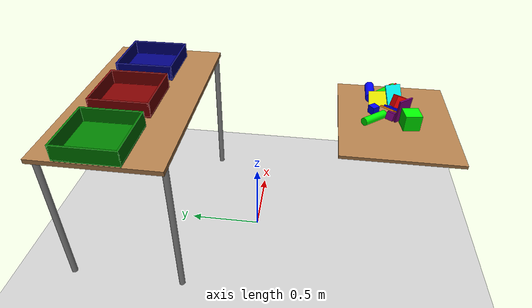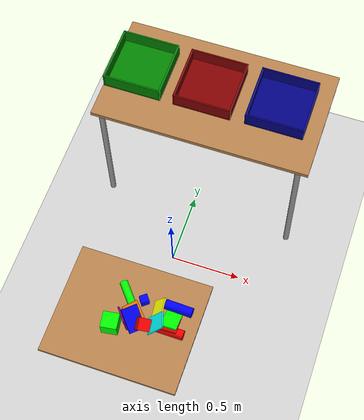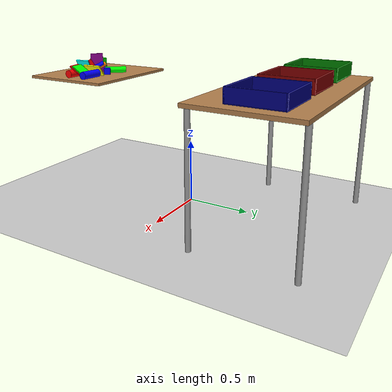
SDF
<sdf version="1.7">
 <world name="default">
  <light name="sun" type="directional">
   <pose>0 0 10 0 -0 0</pose>
   <diffuse>0.8 0.8 0.8 1</diffuse>
   <specular>0.2 0.2 0.2 1</specular>
   <attenuation>
    <range>1000</range>
    <constant>0.9</constant>
    <linear>0.01</linear>
    <quadratic>0.001</quadratic>
   </attenuation>
   <direction>-0.5 0.1 -0.9</direction>
   <spot><inner_angle>0</inner_angle><outer_angle>0</outer_angle><falloff>0</falloff></spot>
  </light>
  <model name="ground_plane">
   <static>1</static>
   <link name="link">
    <collision name="collision">
     <geometry><plane><normal>0 0 1</normal><size>100 100</size></plane></geometry>
     <surface><friction><ode><mu>100</mu><mu2>50</mu2></ode></friction></surface>
    </collision>
    <visual name="visual">
     <cast_shadows>0</cast_shadows>
     <geometry><plane><normal>0 0 1</normal><size>100 100</size></plane></geometry>
     <material>
      <script><uri>file://media/materials/scripts/gazebo.material</uri><name>Gazebo/Grey</name></script>
     </material>
    </visual>
   </link>
  </model>
  <gravity>0 0 -9.8</gravity>
  <magnetic_field>6e-06 2.3e-05 -4.2e-05</magnetic_field>
  <atmosphere type="adiabatic"/>
  <physics type="ode">
   <max_step_size>0.001</max_step_size>
   <real_time_factor>1</real_time_factor>
   <real_time_update_rate>1000</real_time_update_rate>
  </physics>
  <scene><ambient>0.4 0.4 0.4 1</ambient><background>0.7 0.7 0.7 1</background><shadows>1</shadows></scene>
  <audio><device>default</device></audio>
  <spherical_coordinates>
   <surface_model>EARTH_WGS84</surface_model>
   <latitude_deg>0</latitude_deg>
   <longitude_deg>0</longitude_deg>
   <elevation>0</elevation>
   <heading_deg>0</heading_deg>
  </spherical_coordinates>
  <model name="table">
   <static>1</static>
   <link name="link">
    <collision name="surface">
     <pose>0 0 1 0 -0 0</pose>
     <geometry><box><size>1.5 0.8 0.03</size></box></geometry>
     <surface>
      <friction><ode><mu>10</mu><mu2>5</mu2></ode></friction>
      <contact><ode><soft_cfm>0.0001</soft_cfm><soft_erp>0.4</soft_erp><kp>1e+06</kp><kd>10</kd></ode></contact>
     </surface>
    </collision>
    <visual name="visual1">
     <pose>0 0 1 0 -0 0</pose>
     <geometry><box><size>1.5 0.8 0.03</size></box></geometry>
     <material>
      <script><uri>file://media/materials/scripts/gazebo.material</uri><name>Gazebo/Wood</name></script>
     </material>
    </visual>
    <collision name="front_left_leg">
     <pose>0.68 0.38 0.5 0 -0 0</pose>
     <geometry><cylinder><radius>0.02</radius><length>1</length></cylinder></geometry>
    </collision>
    <visual name="front_left_leg">
     <pose>0.68 0.38 0.5 0 -0 0</pose>
     <geometry><cylinder><radius>0.02</radius><length>1</length></cylinder></geometry>
     <material>
      <script><uri>file://media/materials/scripts/gazebo.material</uri><name>Gazebo/Grey</name></script>
     </material>
    </visual>
    <collision name="front_right_leg">
     <pose>0.68 -0.38 0.5 0 -0 0</pose>
     <geometry><cylinder><radius>0.02</radius><length>1</length></cylinder></geometry>
    </collision>
    <visual name="front_right_leg">
     <pose>0.68 -0.38 0.5 0 -0 0</pose>
     <geometry><cylinder><radius>0.02</radius><length>1</length></cylinder></geometry>
     <material>
      <script><uri>file://media/materials/scripts/gazebo.material</uri><name>Gazebo/Grey</name></script>
     </material>
    </visual>
    <collision name="back_right_leg">
     <pose>-0.68 -0.38 0.5 0 -0 0</pose>
     <geometry><cylinder><radius>0.02</radius><length>1</length></cylinder></geometry>
    </collision>
    <visual name="back_right_leg">
     <pose>-0.68 -0.38 0.5 0 -0 0</pose>
     <geometry><cylinder><radius>0.02</radius><length>1</length></cylinder></geometry>
     <material>
      <script><uri>file://media/materials/scripts/gazebo.material</uri><name>Gazebo/Grey</name></script>
     </material>
    </visual>
    <collision name="back_left_leg">
     <pose>-0.68 0.38 0.5 0 -0 0</pose>
     <geometry><cylinder><radius>0.02</radius><length>1</length></cylinder></geometry>
    </collision>
    <visual name="back_left_leg">
     <pose>-0.68 0.38 0.5 0 -0 0</pose>
     <geometry><cylinder><radius>0.02</radius><length>1</length></cylinder></geometry>
     <material>
      <script><uri>file://media/materials/scripts/gazebo.material</uri><name>Gazebo/Grey</name></script>
     </material>
    </visual>
    <inertial>
     <inertia><ixx>1</ixx><ixy>0</ixy><ixz>0</ixz><iyy>1</iyy><iyz>0</iyz><izz>1</izz></inertia>
     <mass>50</mass>
    </inertial>
   </link>
   <pose>0.056083 0.801191 -1.2e-05 0 -0 2.5e-05</pose>
  </model>
  <plugin name="gazebo_link_attacher" filename="libgazebo_link_attacher.so"/>
  <plugin name="gazebo_ros_state" filename="libgazebo_ros_state.so">
   <namespace>/gazebo</namespace>
   <update_rate>100</update_rate>
  </plugin>
  <model name="cube_b">
   <link name="link_2">
    <inertial>
     <mass>2</mass>
     <inertia>
      <ixx>0.00083333</ixx>
      <ixy>0</ixy>
      <ixz>0</ixz>
      <iyy>0.00083333</iyy>
      <iyz>0</iyz>
      <izz>0.00083333</izz>
     </inertia>
    </inertial>
    <visual name="visual">
     <geometry><box><size>0.05 0.05 0.05</size></box></geometry>
     <material>
      <lighting>1</lighting>
      <script><uri>file://media/materials/scripts/gazebo.material</uri><name>Gazebo/Grey</name></script>
      <ambient>0 0 1 1</ambient>
      <diffuse>0 0 1 1</diffuse>
      <specular>0 0 0 1</specular>
      <emissive>0 0 0 1</emissive>
      <shader type="vertex"><normal_map>__default__</normal_map></shader>
     </material>
    </visual>
    <collision name="collision">
     <geometry><box><size>0.05 0.05 0.05</size></box></geometry>
     <surface>
      <friction>
       <ode><mu>0.8</mu><mu2>0.8</mu2><fdir1>0 0 0</fdir1><slip1>0</slip1><slip2>0</slip2></ode>
       <torsional>
        <coefficient>1</coefficient>
        <patch_radius>0</patch_radius>
        <surface_radius>0</surface_radius>
        <use_patch_radius>1</use_patch_radius>
        <ode><slip>0</slip></ode>
       </torsional>
      </friction>
      <bounce><restitution_coefficient>0</restitution_coefficient><threshold>1e+06</threshold></bounce>
      <contact>
       <collide_without_contact>0</collide_without_contact>
       <collide_without_contact_bitmask>1</collide_without_contact_bitmask>
       <collide_bitmask>1</collide_bitmask>
       <ode>
        <soft_cfm>0.0001</soft_cfm>
        <soft_erp>0.4</soft_erp>
        <kp>1e+06</kp>
        <kd>10</kd>
        <max_vel>0.01</max_vel>
        <min_depth>0</min_depth>
       </ode>
      </contact>
     </surface>
    </collision>
   </link>
   <static>0</static>
   <allow_auto_disable>0</allow_auto_disable>
   <pose>0.106589 -0.730785 1.01116 1.56916 -0.00398 0.655541</pose>
  </model>
  <model name="cube_g">
   <link name="link_2">
    <inertial>
     <mass>2</mass>
     <inertia>
      <ixx>0.00333333</ixx>
      <iyy>0.00333333</iyy>
      <izz>0.00333333</izz>
      <ixy>0</ixy>
      <ixz>0</ixz>
      <iyz>0</iyz>
     </inertia>
    </inertial>
    <visual name="visual">
     <geometry><box><size>0.1 0.1 0.1</size></box></geometry>
     <material>
      <lighting>1</lighting>
      <script><uri>file://media/materials/scripts/gazebo.material</uri><name>Gazebo/Grey</name></script>
      <ambient>0 1 0 1</ambient>
      <diffuse>0 1 0 1</diffuse>
      <specular>0 0 0 1</specular>
      <emissive>0 0 0 1</emissive>
      <shader type="vertex"><normal_map>__default__</normal_map></shader>
     </material>
    </visual>
    <collision name="collision">
     <geometry><box><size>0.1 0.1 0.1</size></box></geometry>
     <surface>
      <friction>
       <ode><mu>0.8</mu><mu2>0.8</mu2><fdir1>0 0 0</fdir1><slip1>0</slip1><slip2>0</slip2></ode>
       <torsional>
        <coefficient>1</coefficient>
        <patch_radius>0</patch_radius>
        <surface_radius>0</surface_radius>
        <use_patch_radius>1</use_patch_radius>
        <ode><slip>0</slip></ode>
       </torsional>
      </friction>
      <bounce><restitution_coefficient>0</restitution_coefficient><threshold>1e+06</threshold></bounce>
      <contact>
       <collide_without_contact>0</collide_without_contact>
       <collide_without_contact_bitmask>1</collide_without_contact_bitmask>
       <collide_bitmask>1</collide_bitmask>
       <ode>
        <soft_cfm>0.0001</soft_cfm>
        <soft_erp>0.4</soft_erp>
        <kp>1e+06</kp>
        <kd>10</kd>
        <max_vel>0.01</max_vel>
        <min_depth>0</min_depth>
       </ode>
      </contact>
     </surface>
    </collision>
   </link>
   <static>0</static>
   <allow_auto_disable>0</allow_auto_disable>
   <pose>-0.027816 -0.937987 1.03537 0.000525 -0.0043 0.141789</pose>
  </model>
  <model name="cube_r">
   <link name="link_2">
    <inertial>
     <mass>2</mass>
     <inertia>
      <ixx>0.001875</ixx>
      <ixy>0</ixy>
      <ixz>0</ixz>
      <iyy>0.001875</iyy>
      <iyz>0</iyz>
      <izz>0.001875</izz>
     </inertia>
    </inertial>
    <visual name="visual">
     <geometry><box><size>0.075 0.075 0.075</size></box></geometry>
     <material>
      <lighting>1</lighting>
      <script><uri>file://media/materials/scripts/gazebo.material</uri><name>Gazebo/Grey</name></script>
      <ambient>1 0 0 1</ambient>
      <diffuse>1 0 0 1</diffuse>
      <specular>0 0 0 1</specular>
      <emissive>0 0 0 1</emissive>
      <shader type="vertex"><normal_map>__default__</normal_map></shader>
     </material>
    </visual>
    <collision name="collision">
     <geometry><box><size>0.075 0.075 0.075</size></box></geometry>
     <surface>
      <friction>
       <ode><mu>0.8</mu><mu2>0.8</mu2><fdir1>0 0 0</fdir1><slip1>0</slip1><slip2>0</slip2></ode>
       <torsional>
        <coefficient>1</coefficient>
        <patch_radius>0</patch_radius>
        <surface_radius>0</surface_radius>
        <use_patch_radius>1</use_patch_radius>
        <ode><slip>0</slip></ode>
       </torsional>
      </friction>
      <bounce><restitution_coefficient>0</restitution_coefficient><threshold>1e+06</threshold></bounce>
      <contact>
       <collide_without_contact>0</collide_without_contact>
       <collide_without_contact_bitmask>1</collide_without_contact_bitmask>
       <collide_bitmask>1</collide_bitmask>
       <ode>
        <soft_cfm>0.0001</soft_cfm>
        <soft_erp>0.4</soft_erp>
        <kp>1e+06</kp>
        <kd>10</kd>
        <max_vel>0.01</max_vel>
        <min_depth>0</min_depth>
       </ode>
      </contact>
     </surface>
    </collision>
   </link>
   <static>0</static>
   <allow_auto_disable>0</allow_auto_disable>
   <pose>0.158218 -0.888087 1.04416 1.92583 -0.33727 1.67069</pose>
  </model>
  <model name="cylinder_r">
   <link name="link_0">
    <inertial>
     <mass>0.2</mass>
     <inertia>
      <ixx>0.0005267</ixx>
      <ixy>0</ixy>
      <ixz>0</ixz>
      <iyy>0.0005267</iyy>
      <iyz>0</iyz>
      <izz>9e-05</izz>
     </inertia>
    </inertial>
    <visual name="visual">
     <geometry><cylinder><radius>0.03</radius><length>0.17</length></cylinder></geometry>
     <material>
      <lighting>1</lighting>
      <script><uri>file://media/materials/scripts/gazebo.material</uri><name>Gazebo/Grey</name></script>
      <ambient>1 0 0 1</ambient>
      <diffuse>1 0 0 1</diffuse>
      <specular>0 0 0 1</specular>
      <emissive>0 0 0 1</emissive>
      <shader type="vertex"><normal_map>__default__</normal_map></shader>
     </material>
    </visual>
    <collision name="collision">
     <geometry><cylinder><radius>0.03</radius><length>0.17</length></cylinder></geometry>
     <surface>
      <friction>
       <ode><mu>0.5</mu><mu2>0.5</mu2><fdir1>0 0 0</fdir1><slip1>0</slip1><slip2>0</slip2></ode>
       <torsional>
        <coefficient>1</coefficient>
        <patch_radius>0</patch_radius>
        <surface_radius>0</surface_radius>
        <use_patch_radius>1</use_patch_radius>
        <ode><slip>0</slip></ode>
       </torsional>
      </friction>
      <bounce><restitution_coefficient>0</restitution_coefficient><threshold>1e+06</threshold></bounce>
      <contact>
       <collide_without_contact>0</collide_without_contact>
       <collide_without_contact_bitmask>1</collide_without_contact_bitmask>
       <collide_bitmask>1</collide_bitmask>
       <ode>
        <soft_cfm>0.0001</soft_cfm>
        <soft_erp>0.4</soft_erp>
        <kp>1e+06</kp>
        <kd>10</kd>
        <max_vel>0.01</max_vel>
        <min_depth>0</min_depth>
       </ode>
      </contact>
     </surface>
    </collision>
   </link>
   <static>0</static>
   <allow_auto_disable>0</allow_auto_disable>
   <pose>0.316583 -0.868675 1.01684 1.56393 0.86936 1.55492</pose>
  </model>
  <model name="cylinder_b">
   <link name="link_0">
    <inertial>
     <mass>0.2</mass>
     <inertia>
      <ixx>0.0005267</ixx>
      <ixy>0</ixy>
      <ixz>0</ixz>
      <iyy>0.0005267</iyy>
      <iyz>0</iyz>
      <izz>9e-05</izz>
     </inertia>
    </inertial>
    <visual name="visual">
     <geometry><cylinder><radius>0.03</radius><length>0.17</length></cylinder></geometry>
     <material>
      <lighting>1</lighting>
      <ambient>0 0 1 1</ambient>
      <diffuse>0 0 1 1</diffuse>
      <specular>0.1 0.1 0.1 1</specular>
      <emissive>0 0 0 1</emissive>
      <shader type="vertex"><normal_map>__default__</normal_map></shader>
     </material>
    </visual>
    <collision name="collision">
     <geometry><cylinder><radius>0.03</radius><length>0.17</length></cylinder></geometry>
     <surface>
      <friction>
       <ode><mu>0.4</mu><mu2>0.4</mu2><fdir1>0 0 0</fdir1><slip1>0</slip1><slip2>0</slip2></ode>
       <torsional>
        <coefficient>1</coefficient>
        <patch_radius>0</patch_radius>
        <surface_radius>0</surface_radius>
        <use_patch_radius>1</use_patch_radius>
        <ode><slip>0</slip></ode>
       </torsional>
      </friction>
      <bounce><restitution_coefficient>0</restitution_coefficient><threshold>1e+06</threshold></bounce>
      <contact>
       <collide_without_contact>0</collide_without_contact>
       <collide_without_contact_bitmask>1</collide_without_contact_bitmask>
       <collide_bitmask>1</collide_bitmask>
       <ode>
        <soft_cfm>0.0001</soft_cfm>
        <soft_erp>0.4</soft_erp>
        <kp>1e+06</kp>
        <kd>10</kd>
        <max_vel>0.01</max_vel>
        <min_depth>0</min_depth>
       </ode>
      </contact>
     </surface>
    </collision>
   </link>
   <static>0</static>
   <allow_auto_disable>0</allow_auto_disable>
   <pose>0.321285 -0.717905 1.01707 -1.56627 -0.425269 -1.6005</pose>
  </model>
  <model name="cylinder_g">
   <link name="link_0">
    <inertial>
     <mass>0.2</mass>
     <inertia>
      <ixx>0.0005129</ixx>
      <ixy>0</ixy>
      <ixz>0</ixz>
      <iyy>0.0005129</iyy>
      <iyz>0</iyz>
      <izz>6.25e-05</izz>
     </inertia>
    </inertial>
    <visual name="visual">
     <geometry><cylinder><radius>0.025</radius><length>0.17</length></cylinder></geometry>
     <material>
      <lighting>1</lighting>
      <ambient>0 1 0 1</ambient>
      <diffuse>0 1 0 1</diffuse>
      <specular>0.1 0.1 0.1 1</specular>
      <emissive>0 0 0 1</emissive>
      <shader type="vertex"><normal_map>__default__</normal_map></shader>
     </material>
    </visual>
    <collision name="collision">
     <geometry><cylinder><radius>0.025</radius><length>0.17</length></cylinder></geometry>
     <surface>
      <friction>
       <ode><mu>0.5</mu><mu2>0.5</mu2><fdir1>0 0 0</fdir1><slip1>0</slip1><slip2>0</slip2></ode>
       <torsional>
        <coefficient>1</coefficient>
        <patch_radius>0</patch_radius>
        <surface_radius>0</surface_radius>
        <use_patch_radius>1</use_patch_radius>
        <ode><slip>0</slip></ode>
       </torsional>
      </friction>
      <bounce><restitution_coefficient>0</restitution_coefficient><threshold>1e+06</threshold></bounce>
      <contact>
       <collide_without_contact>0</collide_without_contact>
       <collide_without_contact_bitmask>1</collide_without_contact_bitmask>
       <collide_bitmask>1</collide_bitmask>
       <ode>
        <soft_cfm>0.0001</soft_cfm>
        <soft_erp>0.4</soft_erp>
        <kp>1e+06</kp>
        <kd>10</kd>
        <max_vel>0.01</max_vel>
        <min_depth>0</min_depth>
       </ode>
      </contact>
     </surface>
    </collision>
   </link>
   <static>0</static>
   <allow_auto_disable>0</allow_auto_disable>
   <pose>0.003328 -0.727603 1.01073 1.57654 -1.24817 -2.44531</pose>
  </model>
  <model name="cuboid_r">
   <link name="link">
    <inertial>
     <mass>2</mass>
     <inertia>
      <ixx>0.001683</ixx>
      <iyy>0.003767</iyy>
      <izz>0.005417</izz>
      <ixy>0</ixy>
      <ixz>0</ixz>
      <iyz>0</iyz>
     </inertia>
    </inertial>
    <visual name="visual">
     <geometry><box><size>0.15 0.1 0.01</size></box></geometry>
     <material><ambient>1 0 0 1</ambient><diffuse>1 0 0 1</diffuse><specular>0.1 0.1 0.1 1</specular></material>
    </visual>
    <collision name="collision">
     <geometry><box><size>0.15 0.1 0.01</size></box></geometry>
     <surface>
      <friction>
       <ode><mu>0.6</mu><mu2>0.6</mu2><fdir1>0 0 0</fdir1><slip1>0</slip1><slip2>0</slip2></ode>
       <torsional>
        <coefficient>1</coefficient>
        <patch_radius>0</patch_radius>
        <surface_radius>0</surface_radius>
        <use_patch_radius>1</use_patch_radius>
        <ode><slip>0</slip></ode>
       </torsional>
      </friction>
      <bounce><restitution_coefficient>0</restitution_coefficient><threshold>1e+06</threshold></bounce>
      <contact>
       <collide_without_contact>0</collide_without_contact>
       <collide_without_contact_bitmask>1</collide_without_contact_bitmask>
       <collide_bitmask>1</collide_bitmask>
       <ode>
        <soft_cfm>0.0001</soft_cfm>
        <soft_erp>0.4</soft_erp>
        <kp>1e+06</kp>
        <kd>10</kd>
        <max_vel>0.01</max_vel>
        <min_depth>0</min_depth>
       </ode>
      </contact>
     </surface>
    </collision>
   </link>
   <static>0</static>
   <allow_auto_disable>0</allow_auto_disable>
   <pose>0.307904 -0.82772 1.03261 -3.10176 0.555312 1.64514</pose>
  </model>
  <model name="cuboid_g">
   <link name="link">
    <inertial>
     <mass>2</mass>
     <inertia>
      <ixx>0.001683</ixx>
      <iyy>0.003767</iyy>
      <izz>0.005417</izz>
      <ixy>0</ixy>
      <ixz>0</ixz>
      <iyz>0</iyz>
     </inertia>
    </inertial>
    <visual name="visual">
     <geometry><box><size>0.15 0.1 0.01</size></box></geometry>
     <material><ambient>0 1 0 1</ambient><diffuse>0 1 0 1</diffuse><specular>0.1 0.1 0.1 1</specular></material>
    </visual>
    <collision name="collision">
     <geometry><box><size>0.15 0.1 0.01</size></box></geometry>
     <surface>
      <friction>
       <ode><mu>0.6</mu><mu2>0.6</mu2><fdir1>0 0 0</fdir1><slip1>0</slip1><slip2>0</slip2></ode>
       <torsional>
        <coefficient>1</coefficient>
        <patch_radius>0</patch_radius>
        <surface_radius>0</surface_radius>
        <use_patch_radius>1</use_patch_radius>
        <ode><slip>0</slip></ode>
       </torsional>
      </friction>
      <bounce><restitution_coefficient>0</restitution_coefficient><threshold>1e+06</threshold></bounce>
      <contact>
       <collide_without_contact>0</collide_without_contact>
       <collide_without_contact_bitmask>1</collide_without_contact_bitmask>
       <collide_bitmask>1</collide_bitmask>
       <ode>
        <soft_cfm>0.0001</soft_cfm>
        <soft_erp>0.4</soft_erp>
        <kp>1e+06</kp>
        <kd>10</kd>
        <max_vel>0.01</max_vel>
        <min_depth>0</min_depth>
       </ode>
      </contact>
     </surface>
    </collision>
   </link>
   <static>0</static>
   <allow_auto_disable>0</allow_auto_disable>
   <pose>0.304516 -0.807403 1.03173 3.12465 -0.556316 -1.53962</pose>
  </model>
  <model name="cuboid_b">
   <link name="link">
    <inertial>
     <mass>2</mass>
     <inertia>
      <ixx>0.001683</ixx>
      <iyy>0.003767</iyy>
      <izz>0.005417</izz>
      <ixy>0</ixy>
      <ixz>0</ixz>
      <iyz>0</iyz>
     </inertia>
    </inertial>
    <visual name="visual">
     <geometry><box><size>0.15 0.1 0.01</size></box></geometry>
     <material><ambient>0 0 1 1</ambient><diffuse>0 0 1 1</diffuse><specular>0.1 0.1 0.1 1</specular></material>
    </visual>
    <collision name="collision">
     <geometry><box><size>0.15 0.1 0.01</size></box></geometry>
     <surface>
      <friction>
       <ode><mu>0.6</mu><mu2>0.6</mu2><fdir1>0 0 0</fdir1><slip1>0</slip1><slip2>0</slip2></ode>
       <torsional>
        <coefficient>1</coefficient>
        <patch_radius>0</patch_radius>
        <surface_radius>0</surface_radius>
        <use_patch_radius>1</use_patch_radius>
        <ode><slip>0</slip></ode>
       </torsional>
      </friction>
      <bounce><restitution_coefficient>0</restitution_coefficient><threshold>1e+06</threshold></bounce>
      <contact>
       <collide_without_contact>0</collide_without_contact>
       <collide_without_contact_bitmask>1</collide_without_contact_bitmask>
       <collide_bitmask>1</collide_bitmask>
       <ode>
        <soft_cfm>0.0001</soft_cfm>
        <soft_erp>0.4</soft_erp>
        <kp>1e+06</kp>
        <kd>10</kd>
        <max_vel>0.01</max_vel>
        <min_depth>0</min_depth>
       </ode>
      </contact>
     </surface>
    </collision>
   </link>
   <static>0</static>
   <allow_auto_disable>0</allow_auto_disable>
   <pose>0.088453 -0.870558 1.03135 -0.105942 0.476071 -0.853605</pose>
  </model>
  <model name="cuboid_purple">
   <link name="link">
    <inertial>
     <mass>2</mass>
     <inertia>
      <ixx>0.001683</ixx>
      <iyy>0.003767</iyy>
      <izz>0.005417</izz>
      <ixy>0</ixy>
      <ixz>0</ixz>
      <iyz>0</iyz>
     </inertia>
    </inertial>
    <visual name="visual">
     <geometry><box><size>0.15 0.1 0.01</size></box></geometry>
     <material>
      <ambient>0.5 0 0.5 1</ambient>
      <diffuse>0.5 0 0.5 1</diffuse>
      <specular>0.1 0.1 0.1 1</specular>
     </material>
    </visual>
    <collision name="collision">
     <geometry><box><size>0.15 0.1 0.01</size></box></geometry>
     <surface>
      <friction>
       <ode><mu>0.6</mu><mu2>0.6</mu2><fdir1>0 0 0</fdir1><slip1>0</slip1><slip2>0</slip2></ode>
       <torsional>
        <coefficient>1</coefficient>
        <patch_radius>0</patch_radius>
        <surface_radius>0</surface_radius>
        <use_patch_radius>1</use_patch_radius>
        <ode><slip>0</slip></ode>
       </torsional>
      </friction>
      <bounce><restitution_coefficient>0</restitution_coefficient><threshold>1e+06</threshold></bounce>
      <contact>
       <collide_without_contact>0</collide_without_contact>
       <collide_without_contact_bitmask>1</collide_without_contact_bitmask>
       <collide_bitmask>1</collide_bitmask>
       <ode>
        <soft_cfm>0.0001</soft_cfm>
        <soft_erp>0.4</soft_erp>
        <kp>1e+06</kp>
        <kd>10</kd>
        <max_vel>0.01</max_vel>
        <min_depth>0</min_depth>
       </ode>
      </contact>
     </surface>
    </collision>
   </link>
   <static>0</static>
   <allow_auto_disable>0</allow_auto_disable>
   <pose>0.035906 -0.897082 1.06083 -0.021877 1.48883 0.652761</pose>
  </model>
  <model name="cuboid_orange">
   <link name="link">
    <inertial>
     <mass>2</mass>
     <inertia>
      <ixx>0.001683</ixx>
      <iyy>0.003767</iyy>
      <izz>0.005417</izz>
      <ixy>0</ixy>
      <ixz>0</ixz>
      <iyz>0</iyz>
     </inertia>
    </inertial>
    <visual name="visual">
     <geometry><box><size>0.15 0.1 0.01</size></box></geometry>
     <material>
      <ambient>1 0.5 0 1</ambient>
      <diffuse>1 0.5 0 1</diffuse>
      <specular>0.1 0.1 0.1 1</specular>
     </material>
    </visual>
    <collision name="collision">
     <geometry><box><size>0.15 0.1 0.01</size></box></geometry>
     <surface>
      <friction>
       <ode><mu>0.6</mu><mu2>0.6</mu2><fdir1>0 0 0</fdir1><slip1>0</slip1><slip2>0</slip2></ode>
       <torsional>
        <coefficient>1</coefficient>
        <patch_radius>0</patch_radius>
        <surface_radius>0</surface_radius>
        <use_patch_radius>1</use_patch_radius>
        <ode><slip>0</slip></ode>
       </torsional>
      </friction>
      <bounce><restitution_coefficient>0</restitution_coefficient><threshold>1e+06</threshold></bounce>
      <contact>
       <collide_without_contact>0</collide_without_contact>
       <collide_without_contact_bitmask>1</collide_without_contact_bitmask>
       <collide_bitmask>1</collide_bitmask>
       <ode>
        <soft_cfm>0.0001</soft_cfm>
        <soft_erp>0.4</soft_erp>
        <kp>1e+06</kp>
        <kd>10</kd>
        <max_vel>0.01</max_vel>
        <min_depth>0</min_depth>
       </ode>
      </contact>
     </surface>
    </collision>
   </link>
   <static>0</static>
   <allow_auto_disable>0</allow_auto_disable>
   <pose>0.086327 -0.845804 1.02865 -0.072948 0.48173 -0.782316</pose>
  </model>
  <model name="cuboid_yellow">
   <link name="link">
    <inertial>
     <mass>2</mass>
     <inertia>
      <ixx>0.001683</ixx>
      <iyy>0.003767</iyy>
      <izz>0.005417</izz>
      <ixy>0</ixy>
      <ixz>0</ixz>
      <iyz>0</iyz>
     </inertia>
    </inertial>
    <visual name="visual">
     <geometry><box><size>0.15 0.1 0.01</size></box></geometry>
     <material><ambient>1 1 0 1</ambient><diffuse>1 1 0 1</diffuse><specular>0.1 0.1 0.1 1</specular></material>
    </visual>
    <collision name="collision">
     <geometry><box><size>0.15 0.1 0.01</size></box></geometry>
     <surface>
      <friction>
       <ode><mu>0.6</mu><mu2>0.6</mu2><fdir1>0 0 0</fdir1><slip1>0</slip1><slip2>0</slip2></ode>
       <torsional>
        <coefficient>1</coefficient>
        <patch_radius>0</patch_radius>
        <surface_radius>0</surface_radius>
        <use_patch_radius>1</use_patch_radius>
        <ode><slip>0</slip></ode>
       </torsional>
      </friction>
      <bounce><restitution_coefficient>0</restitution_coefficient><threshold>1e+06</threshold></bounce>
      <contact>
       <collide_without_contact>0</collide_without_contact>
       <collide_without_contact_bitmask>1</collide_without_contact_bitmask>
       <collide_bitmask>1</collide_bitmask>
       <ode>
        <soft_cfm>0.0001</soft_cfm>
        <soft_erp>0.4</soft_erp>
        <kp>1e+06</kp>
        <kd>10</kd>
        <max_vel>0.01</max_vel>
        <min_depth>0</min_depth>
       </ode>
      </contact>
     </surface>
    </collision>
   </link>
   <static>0</static>
   <allow_auto_disable>0</allow_auto_disable>
   <pose>0.209574 -0.777494 1.02982 2.22146 0.007313 1.67607</pose>
  </model>
  <model name="cuboid_cyan">
   <link name="link">
    <inertial>
     <mass>2</mass>
     <inertia>
      <ixx>0.001683</ixx>
      <iyy>0.003767</iyy>
      <izz>0.005417</izz>
      <ixy>0</ixy>
      <ixz>0</ixz>
      <iyz>0</iyz>
     </inertia>
    </inertial>
    <visual name="visual">
     <geometry><box><size>0.15 0.1 0.01</size></box></geometry>
     <material><ambient>0 1 1 1</ambient><diffuse>0 1 1 1</diffuse><specular>0.1 0.1 0.1 1</specular></material>
    </visual>
    <collision name="collision">
     <geometry><box><size>0.15 0.1 0.01</size></box></geometry>
     <surface>
      <friction>
       <ode><mu>0.6</mu><mu2>0.6</mu2><fdir1>0 0 0</fdir1><slip1>0</slip1><slip2>0</slip2></ode>
       <torsional>
        <coefficient>1</coefficient>
        <patch_radius>0</patch_radius>
        <surface_radius>0</surface_radius>
        <use_patch_radius>1</use_patch_radius>
        <ode><slip>0</slip></ode>
       </torsional>
      </friction>
      <bounce><restitution_coefficient>0</restitution_coefficient><threshold>1e+06</threshold></bounce>
      <contact>
       <collide_without_contact>0</collide_without_contact>
       <collide_without_contact_bitmask>1</collide_without_contact_bitmask>
       <collide_bitmask>1</collide_bitmask>
       <ode>
        <soft_cfm>0.0001</soft_cfm>
        <soft_erp>0.4</soft_erp>
        <kp>1e+06</kp>
        <kd>10</kd>
        <max_vel>0.01</max_vel>
        <min_depth>0</min_depth>
       </ode>
      </contact>
     </surface>
    </collision>
   </link>
   <static>0</static>
   <allow_auto_disable>0</allow_auto_disable>
   <pose>0.222567 -0.860982 1.0495 -3.14125 0.931983 -2.80509</pose>
  </model>
  <model name="workspace">
   <link name="link">
    <inertial>
     <mass>100</mass>
     <inertia><ixx>6.02417</ixx><ixy>0</ixy><ixz>0</ixz><iyy>4.08667</iyy><iyz>0</iyz><izz>10.1042</izz></inertia>
    </inertial>
    <visual name="visual">
     <geometry><box><size>0.7 0.85 0.02</size></box></geometry>
     <material>
      <script><name>Gazebo/Wood</name><uri>file://media/materials/scripts/gazebo.material</uri></script>
      <shader type="pixel"/>
     </material>
    </visual>
    <collision name="collision">
     <geometry><box><size>0.7 0.85 0.02</size></box></geometry>
     <surface>
      <friction>
       <ode><mu>100</mu><mu2>50</mu2><fdir1>0 0 0</fdir1><slip1>0</slip1><slip2>0</slip2></ode>
       <torsional>
        <coefficient>1</coefficient>
        <patch_radius>0</patch_radius>
        <surface_radius>0</surface_radius>
        <use_patch_radius>1</use_patch_radius>
        <ode><slip>0</slip></ode>
       </torsional>
      </friction>
      <bounce><restitution_coefficient>0</restitution_coefficient><threshold>1e+06</threshold></bounce>
      <contact>
       <collide_without_contact>0</collide_without_contact>
       <collide_without_contact_bitmask>1</collide_without_contact_bitmask>
       <collide_bitmask>1</collide_bitmask>
       <ode>
        <soft_cfm>0.0001</soft_cfm>
        <soft_erp>0.2</soft_erp>
        <kp>1e+13</kp>
        <kd>10</kd>
        <max_vel>0.01</max_vel>
        <min_depth>0</min_depth>
       </ode>
       <bullet>
        <split_impulse>1</split_impulse>
        <split_impulse_penetration_threshold>-0.01</split_impulse_penetration_threshold>
        <soft_cfm>0</soft_cfm>
        <soft_erp>0.2</soft_erp>
        <kp>1e+13</kp>
        <kd>1</kd>
       </bullet>
      </contact>
     </surface>
    </collision>
   </link>
   <static>1</static>
   <pose>0.0416 -0.859914 0.975746 -0.004154 -0.001127 1.57039</pose>
  </model>
  <model name="tray_red">
   <static>1</static>
   <link name="link">
    <collision name="base_collision">
     <pose>0 0 0.01 0 -0 0</pose>
     <geometry><box><size>0.4 0.4 0.01</size></box></geometry>
     <surface><contact><ode><mu>50</mu><mu2>50</mu2></ode></contact></surface>
    </collision>
    <visual name="base_visual">
     <pose>0 0 0.01 0 -0 0</pose>
     <geometry><box><size>0.4 0.4 0.01</size></box></geometry>
     <material>
      <ambient>1 0 0 1</ambient>
      <diffuse>0.5 0 0 1</diffuse>
      <specular>0 0 0 1</specular>
      <emissive>0 0 0 1</emissive>
      <shininess>100</shininess>
     </material>
    </visual>
    <collision name="front_collision">
     <pose>0 0.195 0.06 0 -0 0</pose>
     <geometry><box><size>0.4 0.01 0.1</size></box></geometry>
    </collision>
    <visual name="front_visual">
     <pose>0 0.195 0.06 0 -0 0</pose>
     <geometry><box><size>0.4 0.01 0.1</size></box></geometry>
     <material>
      <ambient>1 0 0 1</ambient>
      <diffuse>0.5 0 0 1</diffuse>
      <specular>0 0 0 1</specular>
      <emissive>0 0 0 1</emissive>
     </material>
    </visual>
    <collision name="back_collision">
     <pose>0 -0.195 0.06 0 -0 0</pose>
     <geometry><box><size>0.4 0.01 0.1</size></box></geometry>
    </collision>
    <visual name="back_visual">
     <pose>0 -0.195 0.06 0 -0 0</pose>
     <geometry><box><size>0.4 0.01 0.1</size></box></geometry>
     <material>
      <ambient>1 0 0 1</ambient>
      <diffuse>0.5 0 0 1</diffuse>
      <specular>0 0 0 1</specular>
      <emissive>0 0 0 1</emissive>
     </material>
    </visual>
    <collision name="left_collision">
     <pose>0.195 0 0.06 0 -0 0</pose>
     <geometry><box><size>0.01 0.4 0.1</size></box></geometry>
    </collision>
    <visual name="left_visual">
     <pose>0.195 0 0.06 0 -0 0</pose>
     <geometry><box><size>0.01 0.4 0.1</size></box></geometry>
     <material>
      <ambient>1 0 0 1</ambient>
      <diffuse>0.5 0 0 1</diffuse>
      <specular>0 0 0 1</specular>
      <emissive>0 0 0 1</emissive>
     </material>
    </visual>
    <collision name="right_collision">
     <pose>-0.195 0 0.06 0 -0 0</pose>
     <geometry><box><size>0.01 0.4 0.1</size></box></geometry>
    </collision>
    <visual name="right_visual">
     <pose>-0.195 0 0.06 0 -0 0</pose>
     <geometry><box><size>0.01 0.4 0.1</size></box></geometry>
     <material>
      <ambient>1 0 0 1</ambient>
      <diffuse>0.5 0 0 1</diffuse>
      <specular>0 0 0 1</specular>
      <emissive>0 0 0 1</emissive>
     </material>
    </visual>
    <inertial>
     <inertia><ixx>1</ixx><ixy>0</ixy><ixz>0</ixz><iyy>1</iyy><iyz>0</iyz><izz>1</izz></inertia>
     <mass>1</mass>
    </inertial>
   </link>
   <pose>0.003367 0.836815 1.00999 0 -0 0</pose>
  </model>
  <model name="tray_green">
   <static>1</static>
   <link name="link">
    <collision name="base_collision">
     <pose>0 0 0.01 0 -0 0</pose>
     <geometry><box><size>0.4 0.4 0.01</size></box></geometry>
     <surface><contact><ode><mu>50</mu><mu2>50</mu2></ode></contact></surface>
    </collision>
    <visual name="base_visual">
     <pose>0 0 0.01 0 -0 0</pose>
     <geometry><box><size>0.4 0.4 0.01</size></box></geometry>
     <material><ambient>0 1 0 1</ambient><diffuse>0 0.5 0 1</diffuse></material>
    </visual>
    <collision name="front_collision">
     <pose>0 0.195 0.06 0 -0 0</pose>
     <geometry><box><size>0.4 0.01 0.1</size></box></geometry>
    </collision>
    <visual name="front_visual">
     <pose>0 0.195 0.06 0 -0 0</pose>
     <geometry><box><size>0.4 0.01 0.1</size></box></geometry>
     <material><ambient>0 1 0 1</ambient><diffuse>0 0.5 0 1</diffuse></material>
    </visual>
    <collision name="back_collision">
     <pose>0 -0.195 0.06 0 -0 0</pose>
     <geometry><box><size>0.4 0.01 0.1</size></box></geometry>
    </collision>
    <visual name="back_visual">
     <pose>0 -0.195 0.06 0 -0 0</pose>
     <geometry><box><size>0.4 0.01 0.1</size></box></geometry>
     <material><ambient>0 1 0 1</ambient><diffuse>0 0.5 0 1</diffuse></material>
    </visual>
    <collision name="left_collision">
     <pose>0.195 0 0.06 0 -0 0</pose>
     <geometry><box><size>0.01 0.4 0.1</size></box></geometry>
    </collision>
    <visual name="left_visual">
     <pose>0.195 0 0.06 0 -0 0</pose>
     <geometry><box><size>0.01 0.4 0.1</size></box></geometry>
     <material><ambient>0 1 0 1</ambient><diffuse>0 0.5 0 1</diffuse></material>
    </visual>
    <collision name="right_collision">
     <pose>-0.195 0 0.06 0 -0 0</pose>
     <geometry><box><size>0.01 0.4 0.1</size></box></geometry>
    </collision>
    <visual name="right_visual">
     <pose>-0.195 0 0.06 0 -0 0</pose>
     <geometry><box><size>0.01 0.4 0.1</size></box></geometry>
     <material><ambient>0 1 0 1</ambient><diffuse>0 0.5 0 1</diffuse></material>
    </visual>
    <inertial>
     <inertia><ixx>1</ixx><ixy>0</ixy><ixz>0</ixz><iyy>1</iyy><iyz>0</iyz><izz>1</izz></inertia>
     <mass>1</mass>
    </inertial>
   </link>
   <pose>-0.487214 0.834657 1.00999 0 -0 0</pose>
  </model>
  <model name="tray_blue">
   <static>1</static>
   <link name="link">
    <collision name="base_collision">
     <pose>0 0 0.01 0 -0 0</pose>
     <geometry><box><size>0.4 0.4 0.01</size></box></geometry>
     <surface><contact><ode><mu>50</mu><mu2>50</mu2></ode></contact></surface>
    </collision>
    <visual name="base_visual">
     <pose>0 0 0.01 0 -0 0</pose>
     <geometry><box><size>0.4 0.4 0.01</size></box></geometry>
     <material><ambient>0 0 1 1</ambient><diffuse>0 0 0.5 1</diffuse></material>
    </visual>
    <collision name="front_collision">
     <pose>0 0.195 0.06 0 -0 0</pose>
     <geometry><box><size>0.4 0.01 0.1</size></box></geometry>
    </collision>
    <visual name="front_visual">
     <pose>0 0.195 0.06 0 -0 0</pose>
     <geometry><box><size>0.4 0.01 0.1</size></box></geometry>
     <material><ambient>0 0 1 1</ambient><diffuse>0 0 0.5 1</diffuse></material>
    </visual>
    <collision name="back_collision">
     <pose>0 -0.195 0.06 0 -0 0</pose>
     <geometry><box><size>0.4 0.01 0.1</size></box></geometry>
    </collision>
    <visual name="back_visual">
     <pose>0 -0.195 0.06 0 -0 0</pose>
     <geometry><box><size>0.4 0.01 0.1</size></box></geometry>
     <material><ambient>0 0 1 1</ambient><diffuse>0 0 0.5 1</diffuse></material>
    </visual>
    <collision name="left_collision">
     <pose>0.195 0 0.06 0 -0 0</pose>
     <geometry><box><size>0.01 0.4 0.1</size></box></geometry>
    </collision>
    <visual name="left_visual">
     <pose>0.195 0 0.06 0 -0 0</pose>
     <geometry><box><size>0.01 0.4 0.1</size></box></geometry>
     <material><ambient>0 0 1 1</ambient><diffuse>0 0 0.5 1</diffuse></material>
    </visual>
    <collision name="right_collision">
     <pose>-0.195 0 0.06 0 -0 0</pose>
     <geometry><box><size>0.01 0.4 0.1</size></box></geometry>
    </collision>
    <visual name="right_visual">
     <pose>-0.195 0 0.06 0 -0 0</pose>
     <geometry><box><size>0.01 0.4 0.1</size></box></geometry>
     <material><ambient>0 0 1 1</ambient><diffuse>0 0 0.5 1</diffuse></material>
    </visual>
    <inertial>
     <inertia><ixx>1</ixx><ixy>0</ixy><ixz>0</ixz><iyy>1</iyy><iyz>0</iyz><izz>1</izz></inertia>
     <mass>1</mass>
    </inertial>
   </link>
   <pose>0.500589 0.844197 1.00999 0 -0 0</pose>
  </model>
  <model name="cube_purple">
   <link name="link_2">
    <inertial>
     <mass>2</mass>
     <inertia>
      <ixx>0.00083333</ixx>
      <ixy>0</ixy>
      <ixz>0</ixz>
      <iyy>0.00083333</iyy>
      <iyz>0</iyz>
      <izz>0.00083333</izz>
     </inertia>
    </inertial>
    <visual name="visual">
     <geometry><box><size>0.05 0.05 0.05</size></box></geometry>
     <material>
      <lighting>1</lighting>
      <script><uri>file://media/materials/scripts/gazebo.material</uri><name>Gazebo/Grey</name></script>
      <ambient>0.5 0 0.5 1</ambient>
      <diffuse>0.5 0 0.5 1</diffuse>
      <specular>0.1 0.1 0.1 1</specular>
      <emissive>0 0 0 1</emissive>
      <shader type="vertex"><normal_map>__default__</normal_map></shader>
     </material>
    </visual>
    <collision name="collision">
     <geometry><box><size>0.05 0.05 0.05</size></box></geometry>
     <surface>
      <friction>
       <ode><mu>0.8</mu><mu2>0.8</mu2><fdir1>0 0 0</fdir1><slip1>0</slip1><slip2>0</slip2></ode>
       <torsional>
        <coefficient>1</coefficient>
        <patch_radius>0</patch_radius>
        <surface_radius>0</surface_radius>
        <use_patch_radius>1</use_patch_radius>
        <ode><slip>0</slip></ode>
       </torsional>
      </friction>
      <bounce><restitution_coefficient>0</restitution_coefficient><threshold>1e+06</threshold></bounce>
      <contact>
       <collide_without_contact>0</collide_without_contact>
       <collide_without_contact_bitmask>1</collide_without_contact_bitmask>
       <collide_bitmask>1</collide_bitmask>
       <ode>
        <soft_cfm>0.0001</soft_cfm>
        <soft_erp>0.4</soft_erp>
        <kp>1e+06</kp>
        <kd>10</kd>
        <max_vel>0.01</max_vel>
        <min_depth>0</min_depth>
       </ode>
      </contact>
     </surface>
    </collision>
   </link>
   <static>0</static>
   <allow_auto_disable>0</allow_auto_disable>
   <pose>0.031872 -0.834305 1.01708 -0.001594 -0.305557 2.51512</pose>
  </model>
 </world>
</sdf>
